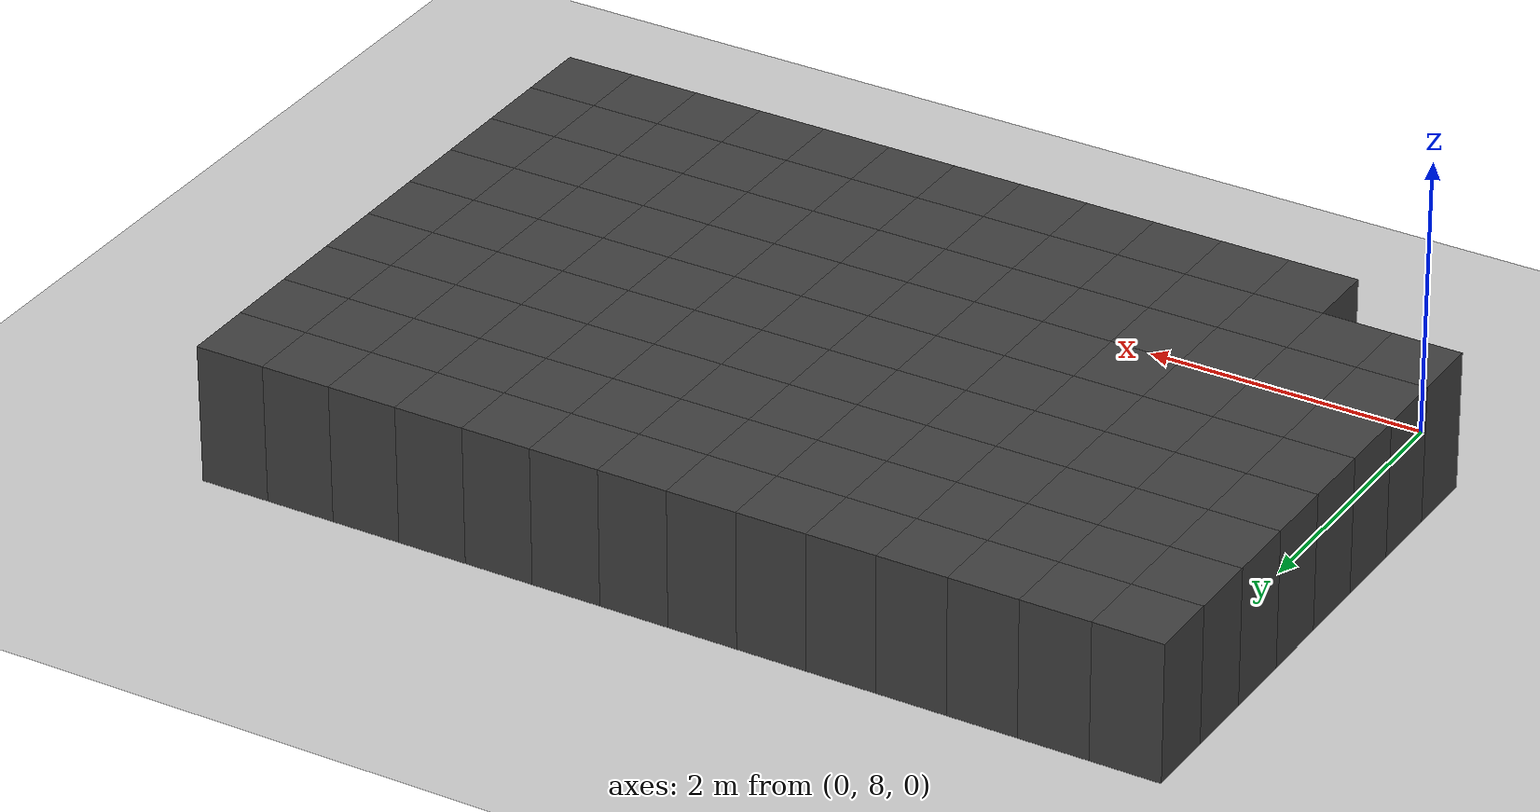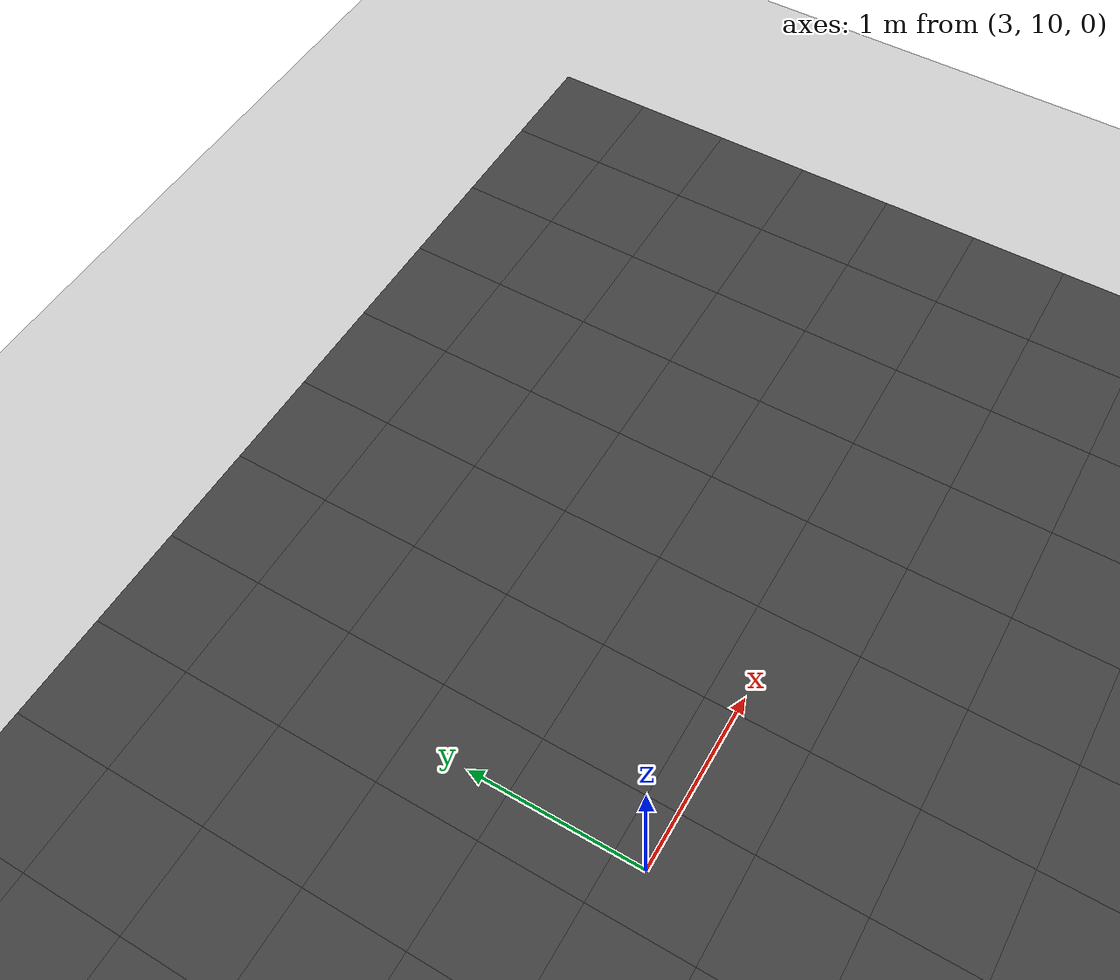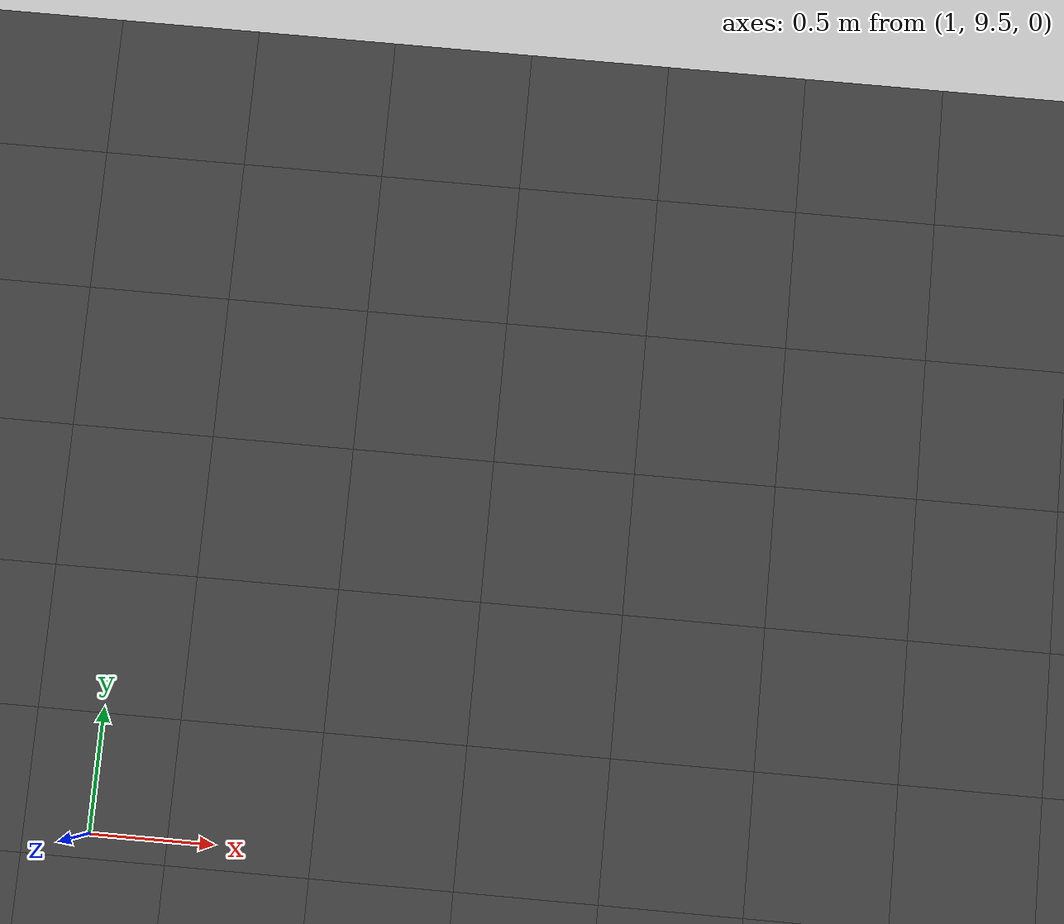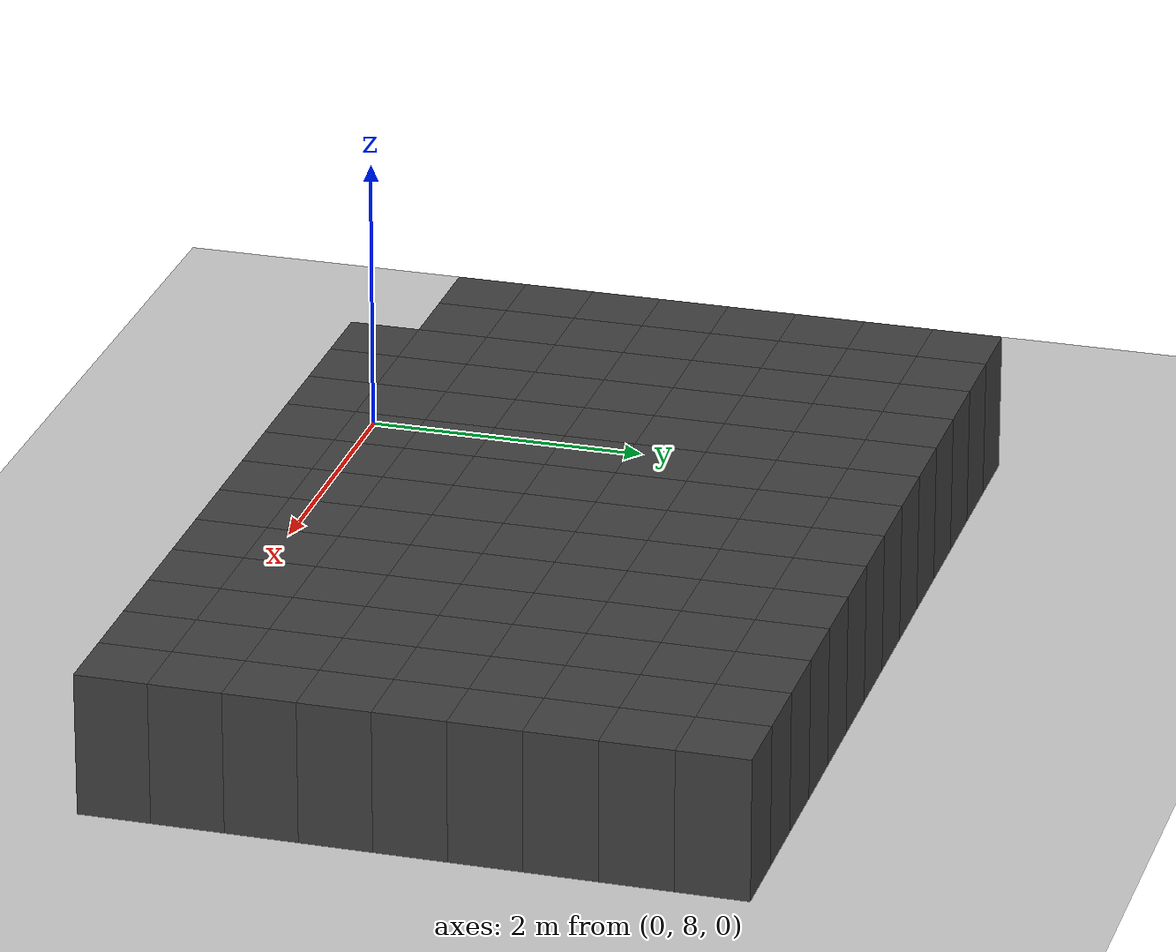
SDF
<sdf version="1.7">
 <world name="map_14074">
  <model name="ground_plane">
   <static>true</static>
   <link name="link">
    <collision name="collision">
     <geometry><plane><normal>0 0 1</normal><size>200 200</size></plane></geometry>
    </collision>
    <visual name="visual">
     <geometry><plane><normal>0 0 1</normal><size>200 200</size></plane></geometry>
     <material><ambient>0.8 0.8 0.8 1</ambient><diffuse>0.8 0.8 0.8 1</diffuse></material>
    </visual>
   </link>
  </model>
  <model name="maze_environment">
   <static>true</static>
   <link name="wall_24">
    <pose>-0.250 12.250 0.500 0 0 0</pose>
    <collision name="col"><geometry><box><size>0.5 0.5 1.0</size></box></geometry></collision>
    <visual name="vis">
     <geometry><box><size>0.5 0.5 1.0</size></box></geometry>
     <material><ambient>0.15 0.15 0.15 1</ambient><diffuse>0.25 0.25 0.25 1</diffuse></material>
    </visual>
   </link>
   <link name="wall_25">
    <pose>0.250 12.250 0.500 0 0 0</pose>
    <collision name="col"><geometry><box><size>0.5 0.5 1.0</size></box></geometry></collision>
    <visual name="vis">
     <geometry><box><size>0.5 0.5 1.0</size></box></geometry>
     <material><ambient>0.15 0.15 0.15 1</ambient><diffuse>0.25 0.25 0.25 1</diffuse></material>
    </visual>
   </link>
   <link name="wall_26">
    <pose>0.750 12.250 0.500 0 0 0</pose>
    <collision name="col"><geometry><box><size>0.5 0.5 1.0</size></box></geometry></collision>
    <visual name="vis">
     <geometry><box><size>0.5 0.5 1.0</size></box></geometry>
     <material><ambient>0.15 0.15 0.15 1</ambient><diffuse>0.25 0.25 0.25 1</diffuse></material>
    </visual>
   </link>
   <link name="wall_27">
    <pose>1.250 12.250 0.500 0 0 0</pose>
    <collision name="col"><geometry><box><size>0.5 0.5 1.0</size></box></geometry></collision>
    <visual name="vis">
     <geometry><box><size>0.5 0.5 1.0</size></box></geometry>
     <material><ambient>0.15 0.15 0.15 1</ambient><diffuse>0.25 0.25 0.25 1</diffuse></material>
    </visual>
   </link>
   <link name="wall_28">
    <pose>1.750 12.250 0.500 0 0 0</pose>
    <collision name="col"><geometry><box><size>0.5 0.5 1.0</size></box></geometry></collision>
    <visual name="vis">
     <geometry><box><size>0.5 0.5 1.0</size></box></geometry>
     <material><ambient>0.15 0.15 0.15 1</ambient><diffuse>0.25 0.25 0.25 1</diffuse></material>
    </visual>
   </link>
   <link name="wall_29">
    <pose>2.250 12.250 0.500 0 0 0</pose>
    <collision name="col"><geometry><box><size>0.5 0.5 1.0</size></box></geometry></collision>
    <visual name="vis">
     <geometry><box><size>0.5 0.5 1.0</size></box></geometry>
     <material><ambient>0.15 0.15 0.15 1</ambient><diffuse>0.25 0.25 0.25 1</diffuse></material>
    </visual>
   </link>
   <link name="wall_30">
    <pose>2.750 12.250 0.500 0 0 0</pose>
    <collision name="col"><geometry><box><size>0.5 0.5 1.0</size></box></geometry></collision>
    <visual name="vis">
     <geometry><box><size>0.5 0.5 1.0</size></box></geometry>
     <material><ambient>0.15 0.15 0.15 1</ambient><diffuse>0.25 0.25 0.25 1</diffuse></material>
    </visual>
   </link>
   <link name="wall_31">
    <pose>3.250 12.250 0.500 0 0 0</pose>
    <collision name="col"><geometry><box><size>0.5 0.5 1.0</size></box></geometry></collision>
    <visual name="vis">
     <geometry><box><size>0.5 0.5 1.0</size></box></geometry>
     <material><ambient>0.15 0.15 0.15 1</ambient><diffuse>0.25 0.25 0.25 1</diffuse></material>
    </visual>
   </link>
   <link name="wall_32">
    <pose>3.750 12.250 0.500 0 0 0</pose>
    <collision name="col"><geometry><box><size>0.5 0.5 1.0</size></box></geometry></collision>
    <visual name="vis">
     <geometry><box><size>0.5 0.5 1.0</size></box></geometry>
     <material><ambient>0.15 0.15 0.15 1</ambient><diffuse>0.25 0.25 0.25 1</diffuse></material>
    </visual>
   </link>
   <link name="wall_33">
    <pose>4.250 12.250 0.500 0 0 0</pose>
    <collision name="col"><geometry><box><size>0.5 0.5 1.0</size></box></geometry></collision>
    <visual name="vis">
     <geometry><box><size>0.5 0.5 1.0</size></box></geometry>
     <material><ambient>0.15 0.15 0.15 1</ambient><diffuse>0.25 0.25 0.25 1</diffuse></material>
    </visual>
   </link>
   <link name="wall_34">
    <pose>4.750 12.250 0.500 0 0 0</pose>
    <collision name="col"><geometry><box><size>0.5 0.5 1.0</size></box></geometry></collision>
    <visual name="vis">
     <geometry><box><size>0.5 0.5 1.0</size></box></geometry>
     <material><ambient>0.15 0.15 0.15 1</ambient><diffuse>0.25 0.25 0.25 1</diffuse></material>
    </visual>
   </link>
   <link name="wall_35">
    <pose>5.250 12.250 0.500 0 0 0</pose>
    <collision name="col"><geometry><box><size>0.5 0.5 1.0</size></box></geometry></collision>
    <visual name="vis">
     <geometry><box><size>0.5 0.5 1.0</size></box></geometry>
     <material><ambient>0.15 0.15 0.15 1</ambient><diffuse>0.25 0.25 0.25 1</diffuse></material>
    </visual>
   </link>
   <link name="wall_36">
    <pose>5.750 12.250 0.500 0 0 0</pose>
    <collision name="col"><geometry><box><size>0.5 0.5 1.0</size></box></geometry></collision>
    <visual name="vis">
     <geometry><box><size>0.5 0.5 1.0</size></box></geometry>
     <material><ambient>0.15 0.15 0.15 1</ambient><diffuse>0.25 0.25 0.25 1</diffuse></material>
    </visual>
   </link>
   <link name="wall_37">
    <pose>6.250 12.250 0.500 0 0 0</pose>
    <collision name="col"><geometry><box><size>0.5 0.5 1.0</size></box></geometry></collision>
    <visual name="vis">
     <geometry><box><size>0.5 0.5 1.0</size></box></geometry>
     <material><ambient>0.15 0.15 0.15 1</ambient><diffuse>0.25 0.25 0.25 1</diffuse></material>
    </visual>
   </link>
   <link name="wall_71">
    <pose>-0.250 11.750 0.500 0 0 0</pose>
    <collision name="col"><geometry><box><size>0.5 0.5 1.0</size></box></geometry></collision>
    <visual name="vis">
     <geometry><box><size>0.5 0.5 1.0</size></box></geometry>
     <material><ambient>0.15 0.15 0.15 1</ambient><diffuse>0.25 0.25 0.25 1</diffuse></material>
    </visual>
   </link>
   <link name="wall_72">
    <pose>0.250 11.750 0.500 0 0 0</pose>
    <collision name="col"><geometry><box><size>0.5 0.5 1.0</size></box></geometry></collision>
    <visual name="vis">
     <geometry><box><size>0.5 0.5 1.0</size></box></geometry>
     <material><ambient>0.15 0.15 0.15 1</ambient><diffuse>0.25 0.25 0.25 1</diffuse></material>
    </visual>
   </link>
   <link name="wall_73">
    <pose>0.750 11.750 0.500 0 0 0</pose>
    <collision name="col"><geometry><box><size>0.5 0.5 1.0</size></box></geometry></collision>
    <visual name="vis">
     <geometry><box><size>0.5 0.5 1.0</size></box></geometry>
     <material><ambient>0.15 0.15 0.15 1</ambient><diffuse>0.25 0.25 0.25 1</diffuse></material>
    </visual>
   </link>
   <link name="wall_74">
    <pose>1.250 11.750 0.500 0 0 0</pose>
    <collision name="col"><geometry><box><size>0.5 0.5 1.0</size></box></geometry></collision>
    <visual name="vis">
     <geometry><box><size>0.5 0.5 1.0</size></box></geometry>
     <material><ambient>0.15 0.15 0.15 1</ambient><diffuse>0.25 0.25 0.25 1</diffuse></material>
    </visual>
   </link>
   <link name="wall_75">
    <pose>1.750 11.750 0.500 0 0 0</pose>
    <collision name="col"><geometry><box><size>0.5 0.5 1.0</size></box></geometry></collision>
    <visual name="vis">
     <geometry><box><size>0.5 0.5 1.0</size></box></geometry>
     <material><ambient>0.15 0.15 0.15 1</ambient><diffuse>0.25 0.25 0.25 1</diffuse></material>
    </visual>
   </link>
   <link name="wall_76">
    <pose>2.250 11.750 0.500 0 0 0</pose>
    <collision name="col"><geometry><box><size>0.5 0.5 1.0</size></box></geometry></collision>
    <visual name="vis">
     <geometry><box><size>0.5 0.5 1.0</size></box></geometry>
     <material><ambient>0.15 0.15 0.15 1</ambient><diffuse>0.25 0.25 0.25 1</diffuse></material>
    </visual>
   </link>
   <link name="wall_77">
    <pose>2.750 11.750 0.500 0 0 0</pose>
    <collision name="col"><geometry><box><size>0.5 0.5 1.0</size></box></geometry></collision>
    <visual name="vis">
     <geometry><box><size>0.5 0.5 1.0</size></box></geometry>
     <material><ambient>0.15 0.15 0.15 1</ambient><diffuse>0.25 0.25 0.25 1</diffuse></material>
    </visual>
   </link>
   <link name="wall_78">
    <pose>3.250 11.750 0.500 0 0 0</pose>
    <collision name="col"><geometry><box><size>0.5 0.5 1.0</size></box></geometry></collision>
    <visual name="vis">
     <geometry><box><size>0.5 0.5 1.0</size></box></geometry>
     <material><ambient>0.15 0.15 0.15 1</ambient><diffuse>0.25 0.25 0.25 1</diffuse></material>
    </visual>
   </link>
   <link name="wall_79">
    <pose>3.750 11.750 0.500 0 0 0</pose>
    <collision name="col"><geometry><box><size>0.5 0.5 1.0</size></box></geometry></collision>
    <visual name="vis">
     <geometry><box><size>0.5 0.5 1.0</size></box></geometry>
     <material><ambient>0.15 0.15 0.15 1</ambient><diffuse>0.25 0.25 0.25 1</diffuse></material>
    </visual>
   </link>
   <link name="wall_80">
    <pose>4.250 11.750 0.500 0 0 0</pose>
    <collision name="col"><geometry><box><size>0.5 0.5 1.0</size></box></geometry></collision>
    <visual name="vis">
     <geometry><box><size>0.5 0.5 1.0</size></box></geometry>
     <material><ambient>0.15 0.15 0.15 1</ambient><diffuse>0.25 0.25 0.25 1</diffuse></material>
    </visual>
   </link>
   <link name="wall_81">
    <pose>4.750 11.750 0.500 0 0 0</pose>
    <collision name="col"><geometry><box><size>0.5 0.5 1.0</size></box></geometry></collision>
    <visual name="vis">
     <geometry><box><size>0.5 0.5 1.0</size></box></geometry>
     <material><ambient>0.15 0.15 0.15 1</ambient><diffuse>0.25 0.25 0.25 1</diffuse></material>
    </visual>
   </link>
   <link name="wall_82">
    <pose>5.250 11.750 0.500 0 0 0</pose>
    <collision name="col"><geometry><box><size>0.5 0.5 1.0</size></box></geometry></collision>
    <visual name="vis">
     <geometry><box><size>0.5 0.5 1.0</size></box></geometry>
     <material><ambient>0.15 0.15 0.15 1</ambient><diffuse>0.25 0.25 0.25 1</diffuse></material>
    </visual>
   </link>
   <link name="wall_83">
    <pose>5.750 11.750 0.500 0 0 0</pose>
    <collision name="col"><geometry><box><size>0.5 0.5 1.0</size></box></geometry></collision>
    <visual name="vis">
     <geometry><box><size>0.5 0.5 1.0</size></box></geometry>
     <material><ambient>0.15 0.15 0.15 1</ambient><diffuse>0.25 0.25 0.25 1</diffuse></material>
    </visual>
   </link>
   <link name="wall_84">
    <pose>6.250 11.750 0.500 0 0 0</pose>
    <collision name="col"><geometry><box><size>0.5 0.5 1.0</size></box></geometry></collision>
    <visual name="vis">
     <geometry><box><size>0.5 0.5 1.0</size></box></geometry>
     <material><ambient>0.15 0.15 0.15 1</ambient><diffuse>0.25 0.25 0.25 1</diffuse></material>
    </visual>
   </link>
   <link name="wall_118">
    <pose>-0.250 11.250 0.500 0 0 0</pose>
    <collision name="col"><geometry><box><size>0.5 0.5 1.0</size></box></geometry></collision>
    <visual name="vis">
     <geometry><box><size>0.5 0.5 1.0</size></box></geometry>
     <material><ambient>0.15 0.15 0.15 1</ambient><diffuse>0.25 0.25 0.25 1</diffuse></material>
    </visual>
   </link>
   <link name="wall_119">
    <pose>0.250 11.250 0.500 0 0 0</pose>
    <collision name="col"><geometry><box><size>0.5 0.5 1.0</size></box></geometry></collision>
    <visual name="vis">
     <geometry><box><size>0.5 0.5 1.0</size></box></geometry>
     <material><ambient>0.15 0.15 0.15 1</ambient><diffuse>0.25 0.25 0.25 1</diffuse></material>
    </visual>
   </link>
   <link name="wall_120">
    <pose>0.750 11.250 0.500 0 0 0</pose>
    <collision name="col"><geometry><box><size>0.5 0.5 1.0</size></box></geometry></collision>
    <visual name="vis">
     <geometry><box><size>0.5 0.5 1.0</size></box></geometry>
     <material><ambient>0.15 0.15 0.15 1</ambient><diffuse>0.25 0.25 0.25 1</diffuse></material>
    </visual>
   </link>
   <link name="wall_121">
    <pose>1.250 11.250 0.500 0 0 0</pose>
    <collision name="col"><geometry><box><size>0.5 0.5 1.0</size></box></geometry></collision>
    <visual name="vis">
     <geometry><box><size>0.5 0.5 1.0</size></box></geometry>
     <material><ambient>0.15 0.15 0.15 1</ambient><diffuse>0.25 0.25 0.25 1</diffuse></material>
    </visual>
   </link>
   <link name="wall_122">
    <pose>1.750 11.250 0.500 0 0 0</pose>
    <collision name="col"><geometry><box><size>0.5 0.5 1.0</size></box></geometry></collision>
    <visual name="vis">
     <geometry><box><size>0.5 0.5 1.0</size></box></geometry>
     <material><ambient>0.15 0.15 0.15 1</ambient><diffuse>0.25 0.25 0.25 1</diffuse></material>
    </visual>
   </link>
   <link name="wall_123">
    <pose>2.250 11.250 0.500 0 0 0</pose>
    <collision name="col"><geometry><box><size>0.5 0.5 1.0</size></box></geometry></collision>
    <visual name="vis">
     <geometry><box><size>0.5 0.5 1.0</size></box></geometry>
     <material><ambient>0.15 0.15 0.15 1</ambient><diffuse>0.25 0.25 0.25 1</diffuse></material>
    </visual>
   </link>
   <link name="wall_124">
    <pose>2.750 11.250 0.500 0 0 0</pose>
    <collision name="col"><geometry><box><size>0.5 0.5 1.0</size></box></geometry></collision>
    <visual name="vis">
     <geometry><box><size>0.5 0.5 1.0</size></box></geometry>
     <material><ambient>0.15 0.15 0.15 1</ambient><diffuse>0.25 0.25 0.25 1</diffuse></material>
    </visual>
   </link>
   <link name="wall_125">
    <pose>3.250 11.250 0.500 0 0 0</pose>
    <collision name="col"><geometry><box><size>0.5 0.5 1.0</size></box></geometry></collision>
    <visual name="vis">
     <geometry><box><size>0.5 0.5 1.0</size></box></geometry>
     <material><ambient>0.15 0.15 0.15 1</ambient><diffuse>0.25 0.25 0.25 1</diffuse></material>
    </visual>
   </link>
   <link name="wall_126">
    <pose>3.750 11.250 0.500 0 0 0</pose>
    <collision name="col"><geometry><box><size>0.5 0.5 1.0</size></box></geometry></collision>
    <visual name="vis">
     <geometry><box><size>0.5 0.5 1.0</size></box></geometry>
     <material><ambient>0.15 0.15 0.15 1</ambient><diffuse>0.25 0.25 0.25 1</diffuse></material>
    </visual>
   </link>
   <link name="wall_127">
    <pose>4.250 11.250 0.500 0 0 0</pose>
    <collision name="col"><geometry><box><size>0.5 0.5 1.0</size></box></geometry></collision>
    <visual name="vis">
     <geometry><box><size>0.5 0.5 1.0</size></box></geometry>
     <material><ambient>0.15 0.15 0.15 1</ambient><diffuse>0.25 0.25 0.25 1</diffuse></material>
    </visual>
   </link>
   <link name="wall_128">
    <pose>4.750 11.250 0.500 0 0 0</pose>
    <collision name="col"><geometry><box><size>0.5 0.5 1.0</size></box></geometry></collision>
    <visual name="vis">
     <geometry><box><size>0.5 0.5 1.0</size></box></geometry>
     <material><ambient>0.15 0.15 0.15 1</ambient><diffuse>0.25 0.25 0.25 1</diffuse></material>
    </visual>
   </link>
   <link name="wall_129">
    <pose>5.250 11.250 0.500 0 0 0</pose>
    <collision name="col"><geometry><box><size>0.5 0.5 1.0</size></box></geometry></collision>
    <visual name="vis">
     <geometry><box><size>0.5 0.5 1.0</size></box></geometry>
     <material><ambient>0.15 0.15 0.15 1</ambient><diffuse>0.25 0.25 0.25 1</diffuse></material>
    </visual>
   </link>
   <link name="wall_130">
    <pose>5.750 11.250 0.500 0 0 0</pose>
    <collision name="col"><geometry><box><size>0.5 0.5 1.0</size></box></geometry></collision>
    <visual name="vis">
     <geometry><box><size>0.5 0.5 1.0</size></box></geometry>
     <material><ambient>0.15 0.15 0.15 1</ambient><diffuse>0.25 0.25 0.25 1</diffuse></material>
    </visual>
   </link>
   <link name="wall_131">
    <pose>6.250 11.250 0.500 0 0 0</pose>
    <collision name="col"><geometry><box><size>0.5 0.5 1.0</size></box></geometry></collision>
    <visual name="vis">
     <geometry><box><size>0.5 0.5 1.0</size></box></geometry>
     <material><ambient>0.15 0.15 0.15 1</ambient><diffuse>0.25 0.25 0.25 1</diffuse></material>
    </visual>
   </link>
   <link name="wall_165">
    <pose>-0.250 10.750 0.500 0 0 0</pose>
    <collision name="col"><geometry><box><size>0.5 0.5 1.0</size></box></geometry></collision>
    <visual name="vis">
     <geometry><box><size>0.5 0.5 1.0</size></box></geometry>
     <material><ambient>0.15 0.15 0.15 1</ambient><diffuse>0.25 0.25 0.25 1</diffuse></material>
    </visual>
   </link>
   <link name="wall_166">
    <pose>0.250 10.750 0.500 0 0 0</pose>
    <collision name="col"><geometry><box><size>0.5 0.5 1.0</size></box></geometry></collision>
    <visual name="vis">
     <geometry><box><size>0.5 0.5 1.0</size></box></geometry>
     <material><ambient>0.15 0.15 0.15 1</ambient><diffuse>0.25 0.25 0.25 1</diffuse></material>
    </visual>
   </link>
   <link name="wall_167">
    <pose>0.750 10.750 0.500 0 0 0</pose>
    <collision name="col"><geometry><box><size>0.5 0.5 1.0</size></box></geometry></collision>
    <visual name="vis">
     <geometry><box><size>0.5 0.5 1.0</size></box></geometry>
     <material><ambient>0.15 0.15 0.15 1</ambient><diffuse>0.25 0.25 0.25 1</diffuse></material>
    </visual>
   </link>
   <link name="wall_168">
    <pose>1.250 10.750 0.500 0 0 0</pose>
    <collision name="col"><geometry><box><size>0.5 0.5 1.0</size></box></geometry></collision>
    <visual name="vis">
     <geometry><box><size>0.5 0.5 1.0</size></box></geometry>
     <material><ambient>0.15 0.15 0.15 1</ambient><diffuse>0.25 0.25 0.25 1</diffuse></material>
    </visual>
   </link>
   <link name="wall_169">
    <pose>1.750 10.750 0.500 0 0 0</pose>
    <collision name="col"><geometry><box><size>0.5 0.5 1.0</size></box></geometry></collision>
    <visual name="vis">
     <geometry><box><size>0.5 0.5 1.0</size></box></geometry>
     <material><ambient>0.15 0.15 0.15 1</ambient><diffuse>0.25 0.25 0.25 1</diffuse></material>
    </visual>
   </link>
   <link name="wall_170">
    <pose>2.250 10.750 0.500 0 0 0</pose>
    <collision name="col"><geometry><box><size>0.5 0.5 1.0</size></box></geometry></collision>
    <visual name="vis">
     <geometry><box><size>0.5 0.5 1.0</size></box></geometry>
     <material><ambient>0.15 0.15 0.15 1</ambient><diffuse>0.25 0.25 0.25 1</diffuse></material>
    </visual>
   </link>
   <link name="wall_171">
    <pose>2.750 10.750 0.500 0 0 0</pose>
    <collision name="col"><geometry><box><size>0.5 0.5 1.0</size></box></geometry></collision>
    <visual name="vis">
     <geometry><box><size>0.5 0.5 1.0</size></box></geometry>
     <material><ambient>0.15 0.15 0.15 1</ambient><diffuse>0.25 0.25 0.25 1</diffuse></material>
    </visual>
   </link>
   <link name="wall_172">
    <pose>3.250 10.750 0.500 0 0 0</pose>
    <collision name="col"><geometry><box><size>0.5 0.5 1.0</size></box></geometry></collision>
    <visual name="vis">
     <geometry><box><size>0.5 0.5 1.0</size></box></geometry>
     <material><ambient>0.15 0.15 0.15 1</ambient><diffuse>0.25 0.25 0.25 1</diffuse></material>
    </visual>
   </link>
   <link name="wall_173">
    <pose>3.750 10.750 0.500 0 0 0</pose>
    <collision name="col"><geometry><box><size>0.5 0.5 1.0</size></box></geometry></collision>
    <visual name="vis">
     <geometry><box><size>0.5 0.5 1.0</size></box></geometry>
     <material><ambient>0.15 0.15 0.15 1</ambient><diffuse>0.25 0.25 0.25 1</diffuse></material>
    </visual>
   </link>
   <link name="wall_174">
    <pose>4.250 10.750 0.500 0 0 0</pose>
    <collision name="col"><geometry><box><size>0.5 0.5 1.0</size></box></geometry></collision>
    <visual name="vis">
     <geometry><box><size>0.5 0.5 1.0</size></box></geometry>
     <material><ambient>0.15 0.15 0.15 1</ambient><diffuse>0.25 0.25 0.25 1</diffuse></material>
    </visual>
   </link>
   <link name="wall_175">
    <pose>4.750 10.750 0.500 0 0 0</pose>
    <collision name="col"><geometry><box><size>0.5 0.5 1.0</size></box></geometry></collision>
    <visual name="vis">
     <geometry><box><size>0.5 0.5 1.0</size></box></geometry>
     <material><ambient>0.15 0.15 0.15 1</ambient><diffuse>0.25 0.25 0.25 1</diffuse></material>
    </visual>
   </link>
   <link name="wall_176">
    <pose>5.250 10.750 0.500 0 0 0</pose>
    <collision name="col"><geometry><box><size>0.5 0.5 1.0</size></box></geometry></collision>
    <visual name="vis">
     <geometry><box><size>0.5 0.5 1.0</size></box></geometry>
     <material><ambient>0.15 0.15 0.15 1</ambient><diffuse>0.25 0.25 0.25 1</diffuse></material>
    </visual>
   </link>
   <link name="wall_177">
    <pose>5.750 10.750 0.500 0 0 0</pose>
    <collision name="col"><geometry><box><size>0.5 0.5 1.0</size></box></geometry></collision>
    <visual name="vis">
     <geometry><box><size>0.5 0.5 1.0</size></box></geometry>
     <material><ambient>0.15 0.15 0.15 1</ambient><diffuse>0.25 0.25 0.25 1</diffuse></material>
    </visual>
   </link>
   <link name="wall_178">
    <pose>6.250 10.750 0.500 0 0 0</pose>
    <collision name="col"><geometry><box><size>0.5 0.5 1.0</size></box></geometry></collision>
    <visual name="vis">
     <geometry><box><size>0.5 0.5 1.0</size></box></geometry>
     <material><ambient>0.15 0.15 0.15 1</ambient><diffuse>0.25 0.25 0.25 1</diffuse></material>
    </visual>
   </link>
   <link name="wall_214">
    <pose>-0.250 10.250 0.500 0 0 0</pose>
    <collision name="col"><geometry><box><size>0.5 0.5 1.0</size></box></geometry></collision>
    <visual name="vis">
     <geometry><box><size>0.5 0.5 1.0</size></box></geometry>
     <material><ambient>0.15 0.15 0.15 1</ambient><diffuse>0.25 0.25 0.25 1</diffuse></material>
    </visual>
   </link>
   <link name="wall_215">
    <pose>0.250 10.250 0.500 0 0 0</pose>
    <collision name="col"><geometry><box><size>0.5 0.5 1.0</size></box></geometry></collision>
    <visual name="vis">
     <geometry><box><size>0.5 0.5 1.0</size></box></geometry>
     <material><ambient>0.15 0.15 0.15 1</ambient><diffuse>0.25 0.25 0.25 1</diffuse></material>
    </visual>
   </link>
   <link name="wall_216">
    <pose>0.750 10.250 0.500 0 0 0</pose>
    <collision name="col"><geometry><box><size>0.5 0.5 1.0</size></box></geometry></collision>
    <visual name="vis">
     <geometry><box><size>0.5 0.5 1.0</size></box></geometry>
     <material><ambient>0.15 0.15 0.15 1</ambient><diffuse>0.25 0.25 0.25 1</diffuse></material>
    </visual>
   </link>
   <link name="wall_217">
    <pose>1.250 10.250 0.500 0 0 0</pose>
    <collision name="col"><geometry><box><size>0.5 0.5 1.0</size></box></geometry></collision>
    <visual name="vis">
     <geometry><box><size>0.5 0.5 1.0</size></box></geometry>
     <material><ambient>0.15 0.15 0.15 1</ambient><diffuse>0.25 0.25 0.25 1</diffuse></material>
    </visual>
   </link>
   <link name="wall_218">
    <pose>1.750 10.250 0.500 0 0 0</pose>
    <collision name="col"><geometry><box><size>0.5 0.5 1.0</size></box></geometry></collision>
    <visual name="vis">
     <geometry><box><size>0.5 0.5 1.0</size></box></geometry>
     <material><ambient>0.15 0.15 0.15 1</ambient><diffuse>0.25 0.25 0.25 1</diffuse></material>
    </visual>
   </link>
   <link name="wall_219">
    <pose>2.250 10.250 0.500 0 0 0</pose>
    <collision name="col"><geometry><box><size>0.5 0.5 1.0</size></box></geometry></collision>
    <visual name="vis">
     <geometry><box><size>0.5 0.5 1.0</size></box></geometry>
     <material><ambient>0.15 0.15 0.15 1</ambient><diffuse>0.25 0.25 0.25 1</diffuse></material>
    </visual>
   </link>
   <link name="wall_220">
    <pose>2.750 10.250 0.500 0 0 0</pose>
    <collision name="col"><geometry><box><size>0.5 0.5 1.0</size></box></geometry></collision>
    <visual name="vis">
     <geometry><box><size>0.5 0.5 1.0</size></box></geometry>
     <material><ambient>0.15 0.15 0.15 1</ambient><diffuse>0.25 0.25 0.25 1</diffuse></material>
    </visual>
   </link>
   <link name="wall_221">
    <pose>3.250 10.250 0.500 0 0 0</pose>
    <collision name="col"><geometry><box><size>0.5 0.5 1.0</size></box></geometry></collision>
    <visual name="vis">
     <geometry><box><size>0.5 0.5 1.0</size></box></geometry>
     <material><ambient>0.15 0.15 0.15 1</ambient><diffuse>0.25 0.25 0.25 1</diffuse></material>
    </visual>
   </link>
   <link name="wall_222">
    <pose>3.750 10.250 0.500 0 0 0</pose>
    <collision name="col"><geometry><box><size>0.5 0.5 1.0</size></box></geometry></collision>
    <visual name="vis">
     <geometry><box><size>0.5 0.5 1.0</size></box></geometry>
     <material><ambient>0.15 0.15 0.15 1</ambient><diffuse>0.25 0.25 0.25 1</diffuse></material>
    </visual>
   </link>
   <link name="wall_223">
    <pose>4.250 10.250 0.500 0 0 0</pose>
    <collision name="col"><geometry><box><size>0.5 0.5 1.0</size></box></geometry></collision>
    <visual name="vis">
     <geometry><box><size>0.5 0.5 1.0</size></box></geometry>
     <material><ambient>0.15 0.15 0.15 1</ambient><diffuse>0.25 0.25 0.25 1</diffuse></material>
    </visual>
   </link>
   <link name="wall_224">
    <pose>4.750 10.250 0.500 0 0 0</pose>
    <collision name="col"><geometry><box><size>0.5 0.5 1.0</size></box></geometry></collision>
    <visual name="vis">
     <geometry><box><size>0.5 0.5 1.0</size></box></geometry>
     <material><ambient>0.15 0.15 0.15 1</ambient><diffuse>0.25 0.25 0.25 1</diffuse></material>
    </visual>
   </link>
   <link name="wall_225">
    <pose>5.250 10.250 0.500 0 0 0</pose>
    <collision name="col"><geometry><box><size>0.5 0.5 1.0</size></box></geometry></collision>
    <visual name="vis">
     <geometry><box><size>0.5 0.5 1.0</size></box></geometry>
     <material><ambient>0.15 0.15 0.15 1</ambient><diffuse>0.25 0.25 0.25 1</diffuse></material>
    </visual>
   </link>
   <link name="wall_226">
    <pose>5.750 10.250 0.500 0 0 0</pose>
    <collision name="col"><geometry><box><size>0.5 0.5 1.0</size></box></geometry></collision>
    <visual name="vis">
     <geometry><box><size>0.5 0.5 1.0</size></box></geometry>
     <material><ambient>0.15 0.15 0.15 1</ambient><diffuse>0.25 0.25 0.25 1</diffuse></material>
    </visual>
   </link>
   <link name="wall_227">
    <pose>6.250 10.250 0.500 0 0 0</pose>
    <collision name="col"><geometry><box><size>0.5 0.5 1.0</size></box></geometry></collision>
    <visual name="vis">
     <geometry><box><size>0.5 0.5 1.0</size></box></geometry>
     <material><ambient>0.15 0.15 0.15 1</ambient><diffuse>0.25 0.25 0.25 1</diffuse></material>
    </visual>
   </link>
   <link name="wall_263">
    <pose>-0.250 9.750 0.500 0 0 0</pose>
    <collision name="col"><geometry><box><size>0.5 0.5 1.0</size></box></geometry></collision>
    <visual name="vis">
     <geometry><box><size>0.5 0.5 1.0</size></box></geometry>
     <material><ambient>0.15 0.15 0.15 1</ambient><diffuse>0.25 0.25 0.25 1</diffuse></material>
    </visual>
   </link>
   <link name="wall_264">
    <pose>0.250 9.750 0.500 0 0 0</pose>
    <collision name="col"><geometry><box><size>0.5 0.5 1.0</size></box></geometry></collision>
    <visual name="vis">
     <geometry><box><size>0.5 0.5 1.0</size></box></geometry>
     <material><ambient>0.15 0.15 0.15 1</ambient><diffuse>0.25 0.25 0.25 1</diffuse></material>
    </visual>
   </link>
   <link name="wall_265">
    <pose>0.750 9.750 0.500 0 0 0</pose>
    <collision name="col"><geometry><box><size>0.5 0.5 1.0</size></box></geometry></collision>
    <visual name="vis">
     <geometry><box><size>0.5 0.5 1.0</size></box></geometry>
     <material><ambient>0.15 0.15 0.15 1</ambient><diffuse>0.25 0.25 0.25 1</diffuse></material>
    </visual>
   </link>
   <link name="wall_266">
    <pose>1.250 9.750 0.500 0 0 0</pose>
    <collision name="col"><geometry><box><size>0.5 0.5 1.0</size></box></geometry></collision>
    <visual name="vis">
     <geometry><box><size>0.5 0.5 1.0</size></box></geometry>
     <material><ambient>0.15 0.15 0.15 1</ambient><diffuse>0.25 0.25 0.25 1</diffuse></material>
    </visual>
   </link>
   <link name="wall_267">
    <pose>1.750 9.750 0.500 0 0 0</pose>
    <collision name="col"><geometry><box><size>0.5 0.5 1.0</size></box></geometry></collision>
    <visual name="vis">
     <geometry><box><size>0.5 0.5 1.0</size></box></geometry>
     <material><ambient>0.15 0.15 0.15 1</ambient><diffuse>0.25 0.25 0.25 1</diffuse></material>
    </visual>
   </link>
   <link name="wall_268">
    <pose>2.250 9.750 0.500 0 0 0</pose>
    <collision name="col"><geometry><box><size>0.5 0.5 1.0</size></box></geometry></collision>
    <visual name="vis">
     <geometry><box><size>0.5 0.5 1.0</size></box></geometry>
     <material><ambient>0.15 0.15 0.15 1</ambient><diffuse>0.25 0.25 0.25 1</diffuse></material>
    </visual>
   </link>
   <link name="wall_269">
    <pose>2.750 9.750 0.500 0 0 0</pose>
    <collision name="col"><geometry><box><size>0.5 0.5 1.0</size></box></geometry></collision>
    <visual name="vis">
     <geometry><box><size>0.5 0.5 1.0</size></box></geometry>
     <material><ambient>0.15 0.15 0.15 1</ambient><diffuse>0.25 0.25 0.25 1</diffuse></material>
    </visual>
   </link>
   <link name="wall_270">
    <pose>3.250 9.750 0.500 0 0 0</pose>
    <collision name="col"><geometry><box><size>0.5 0.5 1.0</size></box></geometry></collision>
    <visual name="vis">
     <geometry><box><size>0.5 0.5 1.0</size></box></geometry>
     <material><ambient>0.15 0.15 0.15 1</ambient><diffuse>0.25 0.25 0.25 1</diffuse></material>
    </visual>
   </link>
   <link name="wall_271">
    <pose>3.750 9.750 0.500 0 0 0</pose>
    <collision name="col"><geometry><box><size>0.5 0.5 1.0</size></box></geometry></collision>
    <visual name="vis">
     <geometry><box><size>0.5 0.5 1.0</size></box></geometry>
     <material><ambient>0.15 0.15 0.15 1</ambient><diffuse>0.25 0.25 0.25 1</diffuse></material>
    </visual>
   </link>
   <link name="wall_272">
    <pose>4.250 9.750 0.500 0 0 0</pose>
    <collision name="col"><geometry><box><size>0.5 0.5 1.0</size></box></geometry></collision>
    <visual name="vis">
     <geometry><box><size>0.5 0.5 1.0</size></box></geometry>
     <material><ambient>0.15 0.15 0.15 1</ambient><diffuse>0.25 0.25 0.25 1</diffuse></material>
    </visual>
   </link>
   <link name="wall_273">
    <pose>4.750 9.750 0.500 0 0 0</pose>
    <collision name="col"><geometry><box><size>0.5 0.5 1.0</size></box></geometry></collision>
    <visual name="vis">
     <geometry><box><size>0.5 0.5 1.0</size></box></geometry>
     <material><ambient>0.15 0.15 0.15 1</ambient><diffuse>0.25 0.25 0.25 1</diffuse></material>
    </visual>
   </link>
   <link name="wall_274">
    <pose>5.250 9.750 0.500 0 0 0</pose>
    <collision name="col"><geometry><box><size>0.5 0.5 1.0</size></box></geometry></collision>
    <visual name="vis">
     <geometry><box><size>0.5 0.5 1.0</size></box></geometry>
     <material><ambient>0.15 0.15 0.15 1</ambient><diffuse>0.25 0.25 0.25 1</diffuse></material>
    </visual>
   </link>
   <link name="wall_275">
    <pose>5.750 9.750 0.500 0 0 0</pose>
    <collision name="col"><geometry><box><size>0.5 0.5 1.0</size></box></geometry></collision>
    <visual name="vis">
     <geometry><box><size>0.5 0.5 1.0</size></box></geometry>
     <material><ambient>0.15 0.15 0.15 1</ambient><diffuse>0.25 0.25 0.25 1</diffuse></material>
    </visual>
   </link>
   <link name="wall_276">
    <pose>6.250 9.750 0.500 0 0 0</pose>
    <collision name="col"><geometry><box><size>0.5 0.5 1.0</size></box></geometry></collision>
    <visual name="vis">
     <geometry><box><size>0.5 0.5 1.0</size></box></geometry>
     <material><ambient>0.15 0.15 0.15 1</ambient><diffuse>0.25 0.25 0.25 1</diffuse></material>
    </visual>
   </link>
   <link name="wall_312">
    <pose>-0.250 9.250 0.500 0 0 0</pose>
    <collision name="col"><geometry><box><size>0.5 0.5 1.0</size></box></geometry></collision>
    <visual name="vis">
     <geometry><box><size>0.5 0.5 1.0</size></box></geometry>
     <material><ambient>0.15 0.15 0.15 1</ambient><diffuse>0.25 0.25 0.25 1</diffuse></material>
    </visual>
   </link>
   <link name="wall_313">
    <pose>0.250 9.250 0.500 0 0 0</pose>
    <collision name="col"><geometry><box><size>0.5 0.5 1.0</size></box></geometry></collision>
    <visual name="vis">
     <geometry><box><size>0.5 0.5 1.0</size></box></geometry>
     <material><ambient>0.15 0.15 0.15 1</ambient><diffuse>0.25 0.25 0.25 1</diffuse></material>
    </visual>
   </link>
   <link name="wall_314">
    <pose>0.750 9.250 0.500 0 0 0</pose>
    <collision name="col"><geometry><box><size>0.5 0.5 1.0</size></box></geometry></collision>
    <visual name="vis">
     <geometry><box><size>0.5 0.5 1.0</size></box></geometry>
     <material><ambient>0.15 0.15 0.15 1</ambient><diffuse>0.25 0.25 0.25 1</diffuse></material>
    </visual>
   </link>
   <link name="wall_315">
    <pose>1.250 9.250 0.500 0 0 0</pose>
    <collision name="col"><geometry><box><size>0.5 0.5 1.0</size></box></geometry></collision>
    <visual name="vis">
     <geometry><box><size>0.5 0.5 1.0</size></box></geometry>
     <material><ambient>0.15 0.15 0.15 1</ambient><diffuse>0.25 0.25 0.25 1</diffuse></material>
    </visual>
   </link>
   <link name="wall_316">
    <pose>1.750 9.250 0.500 0 0 0</pose>
    <collision name="col"><geometry><box><size>0.5 0.5 1.0</size></box></geometry></collision>
    <visual name="vis">
     <geometry><box><size>0.5 0.5 1.0</size></box></geometry>
     <material><ambient>0.15 0.15 0.15 1</ambient><diffuse>0.25 0.25 0.25 1</diffuse></material>
    </visual>
   </link>
   <link name="wall_317">
    <pose>2.250 9.250 0.500 0 0 0</pose>
    <collision name="col"><geometry><box><size>0.5 0.5 1.0</size></box></geometry></collision>
    <visual name="vis">
     <geometry><box><size>0.5 0.5 1.0</size></box></geometry>
     <material><ambient>0.15 0.15 0.15 1</ambient><diffuse>0.25 0.25 0.25 1</diffuse></material>
    </visual>
   </link>
   <link name="wall_318">
    <pose>2.750 9.250 0.500 0 0 0</pose>
    <collision name="col"><geometry><box><size>0.5 0.5 1.0</size></box></geometry></collision>
    <visual name="vis">
     <geometry><box><size>0.5 0.5 1.0</size></box></geometry>
     <material><ambient>0.15 0.15 0.15 1</ambient><diffuse>0.25 0.25 0.25 1</diffuse></material>
    </visual>
   </link>
   <link name="wall_319">
    <pose>3.250 9.250 0.500 0 0 0</pose>
    <collision name="col"><geometry><box><size>0.5 0.5 1.0</size></box></geometry></collision>
    <visual name="vis">
     <geometry><box><size>0.5 0.5 1.0</size></box></geometry>
     <material><ambient>0.15 0.15 0.15 1</ambient><diffuse>0.25 0.25 0.25 1</diffuse></material>
    </visual>
   </link>
   <link name="wall_320">
    <pose>3.750 9.250 0.500 0 0 0</pose>
    <collision name="col"><geometry><box><size>0.5 0.5 1.0</size></box></geometry></collision>
    <visual name="vis">
     <geometry><box><size>0.5 0.5 1.0</size></box></geometry>
     <material><ambient>0.15 0.15 0.15 1</ambient><diffuse>0.25 0.25 0.25 1</diffuse></material>
    </visual>
   </link>
   <link name="wall_321">
    <pose>4.250 9.250 0.500 0 0 0</pose>
    <collision name="col"><geometry><box><size>0.5 0.5 1.0</size></box></geometry></collision>
    <visual name="vis">
     <geometry><box><size>0.5 0.5 1.0</size></box></geometry>
     <material><ambient>0.15 0.15 0.15 1</ambient><diffuse>0.25 0.25 0.25 1</diffuse></material>
    </visual>
   </link>
   <link name="wall_322">
    <pose>4.750 9.250 0.500 0 0 0</pose>
    <collision name="col"><geometry><box><size>0.5 0.5 1.0</size></box></geometry></collision>
    <visual name="vis">
     <geometry><box><size>0.5 0.5 1.0</size></box></geometry>
     <material><ambient>0.15 0.15 0.15 1</ambient><diffuse>0.25 0.25 0.25 1</diffuse></material>
    </visual>
   </link>
   <link name="wall_323">
    <pose>5.250 9.250 0.500 0 0 0</pose>
    <collision name="col"><geometry><box><size>0.5 0.5 1.0</size></box></geometry></collision>
    <visual name="vis">
     <geometry><box><size>0.5 0.5 1.0</size></box></geometry>
     <material><ambient>0.15 0.15 0.15 1</ambient><diffuse>0.25 0.25 0.25 1</diffuse></material>
    </visual>
   </link>
   <link name="wall_324">
    <pose>5.750 9.250 0.500 0 0 0</pose>
    <collision name="col"><geometry><box><size>0.5 0.5 1.0</size></box></geometry></collision>
    <visual name="vis">
     <geometry><box><size>0.5 0.5 1.0</size></box></geometry>
     <material><ambient>0.15 0.15 0.15 1</ambient><diffuse>0.25 0.25 0.25 1</diffuse></material>
    </visual>
   </link>
   <link name="wall_325">
    <pose>6.250 9.250 0.500 0 0 0</pose>
    <collision name="col"><geometry><box><size>0.5 0.5 1.0</size></box></geometry></collision>
    <visual name="vis">
     <geometry><box><size>0.5 0.5 1.0</size></box></geometry>
     <material><ambient>0.15 0.15 0.15 1</ambient><diffuse>0.25 0.25 0.25 1</diffuse></material>
    </visual>
   </link>
   <link name="wall_361">
    <pose>-0.250 8.750 0.500 0 0 0</pose>
    <collision name="col"><geometry><box><size>0.5 0.5 1.0</size></box></geometry></collision>
    <visual name="vis">
     <geometry><box><size>0.5 0.5 1.0</size></box></geometry>
     <material><ambient>0.15 0.15 0.15 1</ambient><diffuse>0.25 0.25 0.25 1</diffuse></material>
    </visual>
   </link>
   <link name="wall_362">
    <pose>0.250 8.750 0.500 0 0 0</pose>
    <collision name="col"><geometry><box><size>0.5 0.5 1.0</size></box></geometry></collision>
    <visual name="vis">
     <geometry><box><size>0.5 0.5 1.0</size></box></geometry>
     <material><ambient>0.15 0.15 0.15 1</ambient><diffuse>0.25 0.25 0.25 1</diffuse></material>
    </visual>
   </link>
   <link name="wall_363">
    <pose>0.750 8.750 0.500 0 0 0</pose>
    <collision name="col"><geometry><box><size>0.5 0.5 1.0</size></box></geometry></collision>
    <visual name="vis">
     <geometry><box><size>0.5 0.5 1.0</size></box></geometry>
     <material><ambient>0.15 0.15 0.15 1</ambient><diffuse>0.25 0.25 0.25 1</diffuse></material>
    </visual>
   </link>
   <link name="wall_364">
    <pose>1.250 8.750 0.500 0 0 0</pose>
    <collision name="col"><geometry><box><size>0.5 0.5 1.0</size></box></geometry></collision>
    <visual name="vis">
     <geometry><box><size>0.5 0.5 1.0</size></box></geometry>
     <material><ambient>0.15 0.15 0.15 1</ambient><diffuse>0.25 0.25 0.25 1</diffuse></material>
    </visual>
   </link>
   <link name="wall_365">
    <pose>1.750 8.750 0.500 0 0 0</pose>
    <collision name="col"><geometry><box><size>0.5 0.5 1.0</size></box></geometry></collision>
    <visual name="vis">
     <geometry><box><size>0.5 0.5 1.0</size></box></geometry>
     <material><ambient>0.15 0.15 0.15 1</ambient><diffuse>0.25 0.25 0.25 1</diffuse></material>
    </visual>
   </link>
   <link name="wall_366">
    <pose>2.250 8.750 0.500 0 0 0</pose>
    <collision name="col"><geometry><box><size>0.5 0.5 1.0</size></box></geometry></collision>
    <visual name="vis">
     <geometry><box><size>0.5 0.5 1.0</size></box></geometry>
     <material><ambient>0.15 0.15 0.15 1</ambient><diffuse>0.25 0.25 0.25 1</diffuse></material>
    </visual>
   </link>
   <link name="wall_367">
    <pose>2.750 8.750 0.500 0 0 0</pose>
    <collision name="col"><geometry><box><size>0.5 0.5 1.0</size></box></geometry></collision>
    <visual name="vis">
     <geometry><box><size>0.5 0.5 1.0</size></box></geometry>
     <material><ambient>0.15 0.15 0.15 1</ambient><diffuse>0.25 0.25 0.25 1</diffuse></material>
    </visual>
   </link>
   <link name="wall_368">
    <pose>3.250 8.750 0.500 0 0 0</pose>
    <collision name="col"><geometry><box><size>0.5 0.5 1.0</size></box></geometry></collision>
    <visual name="vis">
     <geometry><box><size>0.5 0.5 1.0</size></box></geometry>
     <material><ambient>0.15 0.15 0.15 1</ambient><diffuse>0.25 0.25 0.25 1</diffuse></material>
    </visual>
   </link>
   <link name="wall_369">
    <pose>3.750 8.750 0.500 0 0 0</pose>
    <collision name="col"><geometry><box><size>0.5 0.5 1.0</size></box></geometry></collision>
    <visual name="vis">
     <geometry><box><size>0.5 0.5 1.0</size></box></geometry>
     <material><ambient>0.15 0.15 0.15 1</ambient><diffuse>0.25 0.25 0.25 1</diffuse></material>
    </visual>
   </link>
   <link name="wall_370">
    <pose>4.250 8.750 0.500 0 0 0</pose>
    <collision name="col"><geometry><box><size>0.5 0.5 1.0</size></box></geometry></collision>
    <visual name="vis">
     <geometry><box><size>0.5 0.5 1.0</size></box></geometry>
     <material><ambient>0.15 0.15 0.15 1</ambient><diffuse>0.25 0.25 0.25 1</diffuse></material>
    </visual>
   </link>
   <link name="wall_371">
    <pose>4.750 8.750 0.500 0 0 0</pose>
    <collision name="col"><geometry><box><size>0.5 0.5 1.0</size></box></geometry></collision>
    <visual name="vis">
     <geometry><box><size>0.5 0.5 1.0</size></box></geometry>
     <material><ambient>0.15 0.15 0.15 1</ambient><diffuse>0.25 0.25 0.25 1</diffuse></material>
    </visual>
   </link>
   <link name="wall_372">
    <pose>5.250 8.750 0.500 0 0 0</pose>
    <collision name="col"><geometry><box><size>0.5 0.5 1.0</size></box></geometry></collision>
    <visual name="vis">
     <geometry><box><size>0.5 0.5 1.0</size></box></geometry>
     <material><ambient>0.15 0.15 0.15 1</ambient><diffuse>0.25 0.25 0.25 1</diffuse></material>
    </visual>
   </link>
   <link name="wall_373">
    <pose>5.750 8.750 0.500 0 0 0</pose>
    <collision name="col"><geometry><box><size>0.5 0.5 1.0</size></box></geometry></collision>
    <visual name="vis">
     <geometry><box><size>0.5 0.5 1.0</size></box></geometry>
     <material><ambient>0.15 0.15 0.15 1</ambient><diffuse>0.25 0.25 0.25 1</diffuse></material>
    </visual>
   </link>
   <link name="wall_374">
    <pose>6.250 8.750 0.500 0 0 0</pose>
    <collision name="col"><geometry><box><size>0.5 0.5 1.0</size></box></geometry></collision>
    <visual name="vis">
     <geometry><box><size>0.5 0.5 1.0</size></box></geometry>
     <material><ambient>0.15 0.15 0.15 1</ambient><diffuse>0.25 0.25 0.25 1</diffuse></material>
    </visual>
   </link>
   <link name="wall_412">
    <pose>0.750 8.250 0.500 0 0 0</pose>
    <collision name="col"><geometry><box><size>0.5 0.5 1.0</size></box></geometry></collision>
    <visual name="vis">
     <geometry><box><size>0.5 0.5 1.0</size></box></geometry>
     <material><ambient>0.15 0.15 0.15 1</ambient><diffuse>0.25 0.25 0.25 1</diffuse></material>
    </visual>
   </link>
   <link name="wall_413">
    <pose>1.250 8.250 0.500 0 0 0</pose>
    <collision name="col"><geometry><box><size>0.5 0.5 1.0</size></box></geometry></collision>
    <visual name="vis">
     <geometry><box><size>0.5 0.5 1.0</size></box></geometry>
     <material><ambient>0.15 0.15 0.15 1</ambient><diffuse>0.25 0.25 0.25 1</diffuse></material>
    </visual>
   </link>
   <link name="wall_414">
    <pose>1.750 8.250 0.500 0 0 0</pose>
    <collision name="col"><geometry><box><size>0.5 0.5 1.0</size></box></geometry></collision>
    <visual name="vis">
     <geometry><box><size>0.5 0.5 1.0</size></box></geometry>
     <material><ambient>0.15 0.15 0.15 1</ambient><diffuse>0.25 0.25 0.25 1</diffuse></material>
    </visual>
   </link>
   <link name="wall_415">
    <pose>2.250 8.250 0.500 0 0 0</pose>
    <collision name="col"><geometry><box><size>0.5 0.5 1.0</size></box></geometry></collision>
    <visual name="vis">
     <geometry><box><size>0.5 0.5 1.0</size></box></geometry>
     <material><ambient>0.15 0.15 0.15 1</ambient><diffuse>0.25 0.25 0.25 1</diffuse></material>
    </visual>
   </link>
   <link name="wall_416">
    <pose>2.750 8.250 0.500 0 0 0</pose>
    <collision name="col"><geometry><box><size>0.5 0.5 1.0</size></box></geometry></collision>
    <visual name="vis">
     <geometry><box><size>0.5 0.5 1.0</size></box></geometry>
     <material><ambient>0.15 0.15 0.15 1</ambient><diffuse>0.25 0.25 0.25 1</diffuse></material>
    </visual>
   </link>
   <link name="wall_417">
    <pose>3.250 8.250 0.500 0 0 0</pose>
    <collision name="col"><geometry><box><size>0.5 0.5 1.0</size></box></geometry></collision>
    <visual name="vis">
     <geometry><box><size>0.5 0.5 1.0</size></box></geometry>
     <material><ambient>0.15 0.15 0.15 1</ambient><diffuse>0.25 0.25 0.25 1</diffuse></material>
    </visual>
   </link>
   <link name="wall_418">
    <pose>3.750 8.250 0.500 0 0 0</pose>
    <collision name="col"><geometry><box><size>0.5 0.5 1.0</size></box></geometry></collision>
    <visual name="vis">
     <geometry><box><size>0.5 0.5 1.0</size></box></geometry>
     <material><ambient>0.15 0.15 0.15 1</ambient><diffuse>0.25 0.25 0.25 1</diffuse></material>
    </visual>
   </link>
   <link name="wall_419">
    <pose>4.250 8.250 0.500 0 0 0</pose>
    <collision name="col"><geometry><box><size>0.5 0.5 1.0</size></box></geometry></collision>
    <visual name="vis">
     <geometry><box><size>0.5 0.5 1.0</size></box></geometry>
     <material><ambient>0.15 0.15 0.15 1</ambient><diffuse>0.25 0.25 0.25 1</diffuse></material>
    </visual>
   </link>
   <link name="wall_420">
    <pose>4.750 8.250 0.500 0 0 0</pose>
    <collision name="col"><geometry><box><size>0.5 0.5 1.0</size></box></geometry></collision>
    <visual name="vis">
     <geometry><box><size>0.5 0.5 1.0</size></box></geometry>
     <material><ambient>0.15 0.15 0.15 1</ambient><diffuse>0.25 0.25 0.25 1</diffuse></material>
    </visual>
   </link>
   <link name="wall_421">
    <pose>5.250 8.250 0.500 0 0 0</pose>
    <collision name="col"><geometry><box><size>0.5 0.5 1.0</size></box></geometry></collision>
    <visual name="vis">
     <geometry><box><size>0.5 0.5 1.0</size></box></geometry>
     <material><ambient>0.15 0.15 0.15 1</ambient><diffuse>0.25 0.25 0.25 1</diffuse></material>
    </visual>
   </link>
   <link name="wall_422">
    <pose>5.750 8.250 0.500 0 0 0</pose>
    <collision name="col"><geometry><box><size>0.5 0.5 1.0</size></box></geometry></collision>
    <visual name="vis">
     <geometry><box><size>0.5 0.5 1.0</size></box></geometry>
     <material><ambient>0.15 0.15 0.15 1</ambient><diffuse>0.25 0.25 0.25 1</diffuse></material>
    </visual>
   </link>
   <link name="wall_423">
    <pose>6.250 8.250 0.500 0 0 0</pose>
    <collision name="col"><geometry><box><size>0.5 0.5 1.0</size></box></geometry></collision>
    <visual name="vis">
     <geometry><box><size>0.5 0.5 1.0</size></box></geometry>
     <material><ambient>0.15 0.15 0.15 1</ambient><diffuse>0.25 0.25 0.25 1</diffuse></material>
    </visual>
   </link>
  </model>
 </world>
</sdf>
